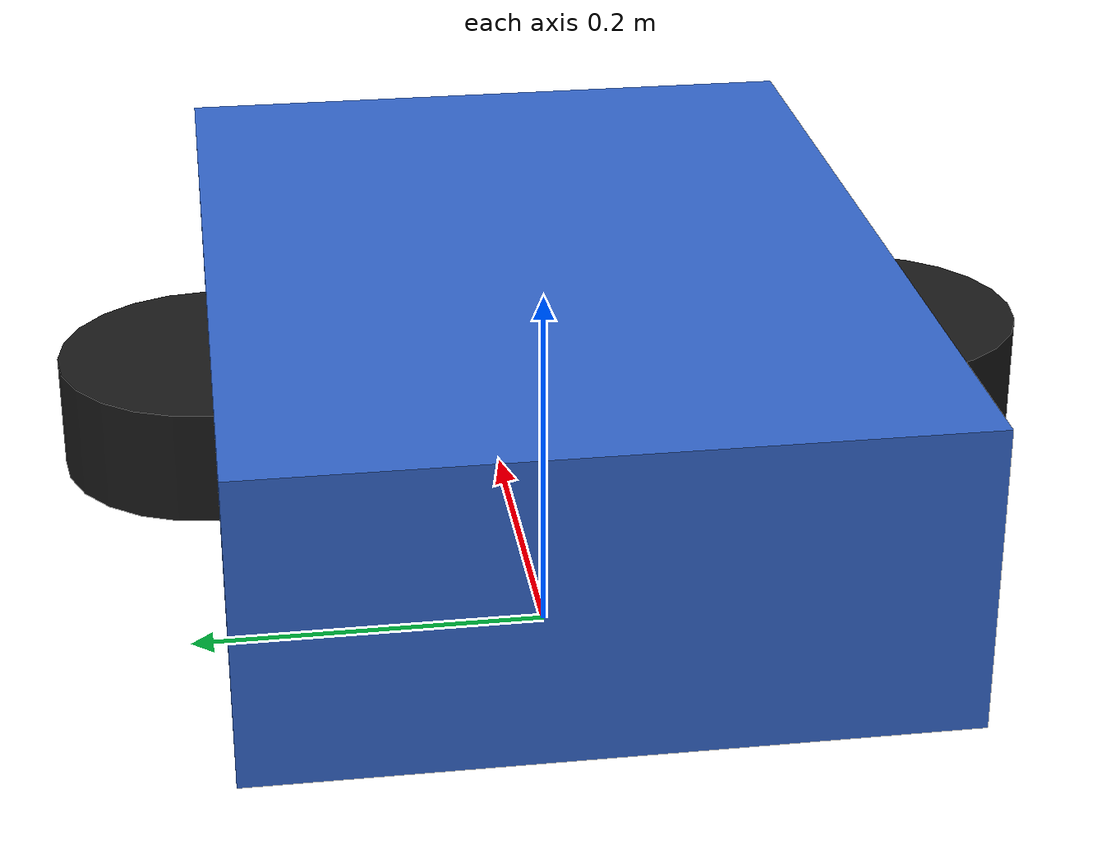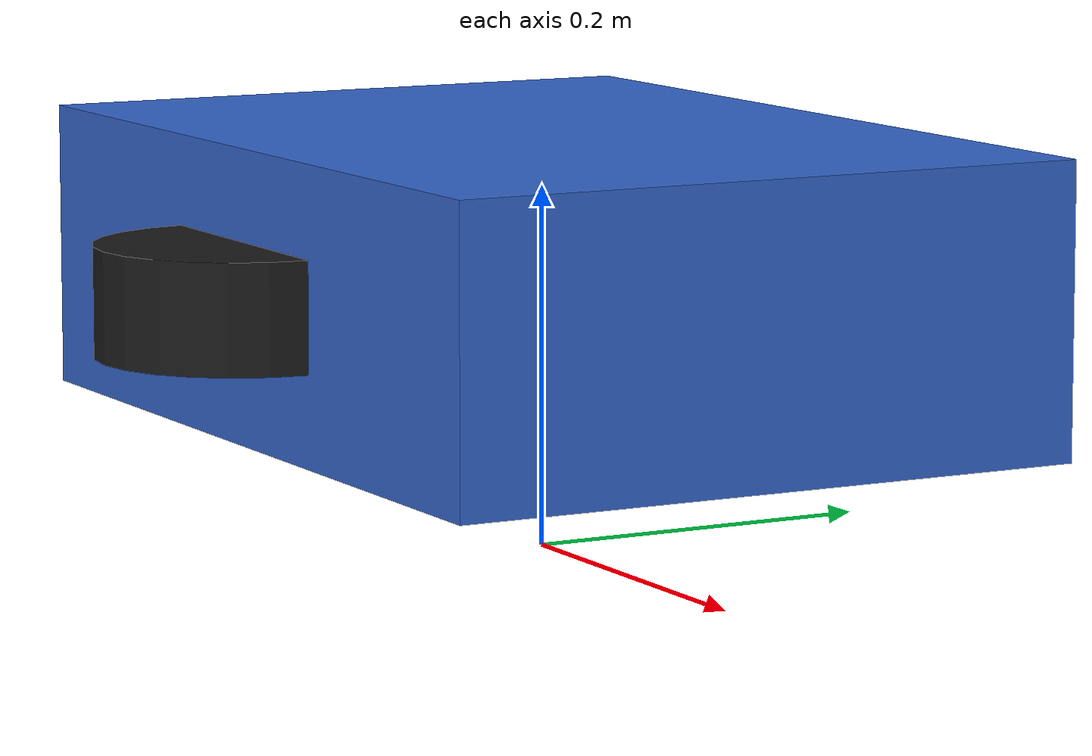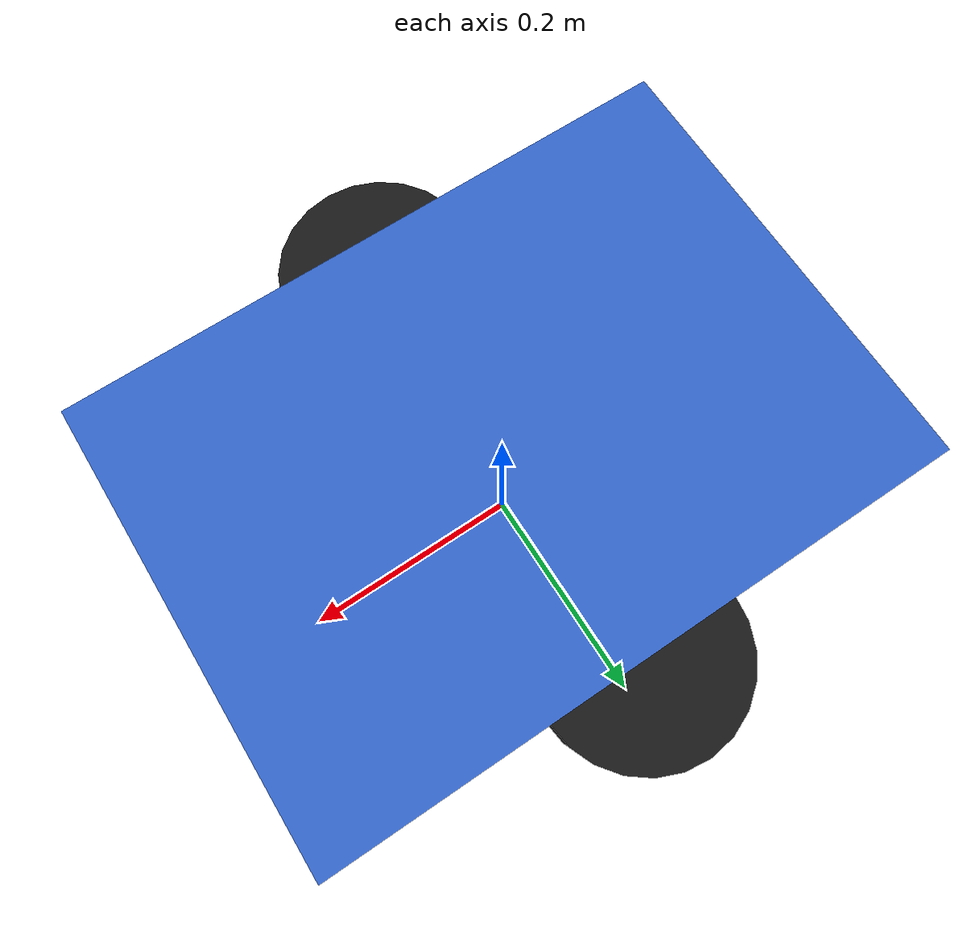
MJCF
<!-- Minimal MuJoCo placeholder for Q1 dual-wheel base -->
<mujoco model="q1_wheeled">
  <option timestep="0.002"/>
  <worldbody>
    <body name="base_link" pos="0 0 0.15">
      <freejoint/>
      <geom type="box" size="0.25 0.18 0.08" rgba="0.2 0.4 0.8 1"/>
      <body name="wheel_left" pos="0 0.18 0">
        <joint name="wheel_left_joint" type="hinge" axis="0 1 0"/>
        <geom type="cylinder" size="0.08 0.03" rgba="0.1 0.1 0.1 1"/>
      </body>
      <body name="wheel_right" pos="0 -0.18 0">
        <joint name="wheel_right_joint" type="hinge" axis="0 1 0"/>
        <geom type="cylinder" size="0.08 0.03" rgba="0.1 0.1 0.1 1"/>
      </body>
    </body>
  </worldbody>
  <actuator>
    <motor joint="wheel_left_joint" gear="8"/>
    <motor joint="wheel_right_joint" gear="8"/>
  </actuator>
</mujoco>
